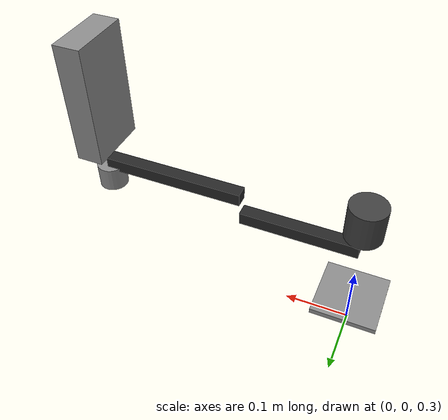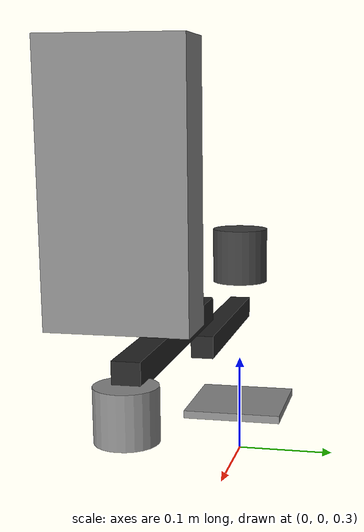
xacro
<?xml version="1.0"?>
<robot name="army_manipulator" xmlns:xacro="http://www.ros.org/wiki/xacro">

  <!-- true: mock_components/GenericSystem (RViz/MoveIt2 검증용, 기본값)
       false: 실제 하드웨어 인터페이스 (팀원 Hardware Interface 완성 후) -->
  <xacro:arg name="use_mock_hardware" default="true"/>

  <!-- 구동부 상면 높이: world -> base_link -->
  <xacro:property name="base_height" value="0.350"/>

  <xacro:include filename="$(find army_manipulator_description)/urdf/materials.xacro"/>
  <xacro:include filename="$(find army_manipulator_description)/urdf/army_manipulator_ros2_control.xacro"/>
  <xacro:include filename="$(find army_manipulator_description)/urdf/army_manipulator_macro.xacro"/>

  <link name="world"/>

  <xacro:army_manipulator prefix="" parent="world" use_mock_hardware="$(arg use_mock_hardware)">
    <origin xyz="0 0 ${base_height}" rpy="0 0 0"/>
  </xacro:army_manipulator>

</robot>

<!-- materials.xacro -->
<robot xmlns:xacro="http://www.ros.org/wiki/xacro">

  <material name="cfrp">
    <color rgba="0.15 0.15 0.15 1.0"/>
  </material>
  <material name="petg_grey">
    <color rgba="0.55 0.55 0.55 1.0"/>
  </material>
  <material name="motor_dark">
    <color rgba="0.25 0.25 0.25 1.0"/>
  </material>
  <material name="tcp_red">
    <color rgba="1.0 0.1 0.1 1.0"/>
  </material>

</robot>

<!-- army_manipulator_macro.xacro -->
<robot xmlns:xacro="http://www.ros.org/wiki/xacro">

  <xacro:macro name="army_manipulator" params="prefix parent use_mock_hardware:=true *origin">

    <!-- ========== 치수 파라미터 ========== -->
    <xacro:property name="sh_off"   value="0.1616"/>  <!-- base_link -> shoulder_pan_link -->
    <xacro:property name="L1"       value="0.180"/>   <!-- shoulder -> elbow -->
    <xacro:property name="L2"       value="0.220"/>   <!-- elbow -> wrist -->
    <xacro:property name="L3"       value="0.220"/>   <!-- wrist -> tcp (gripper 포함) -->
    <xacro:property name="off_shoulder" value="-0.055"/>
    <xacro:property name="off_elbow"    value="0.035"/>
    <xacro:property name="off_wrist"    value="-0.025"/>
    <xacro:property name="off_gripper"  value="0.038"/>

    <!-- ========== parent -> base_link ========== -->
    <joint name="${prefix}world_to_base" type="fixed">
      <parent link="${parent}"/>
      <child  link="${prefix}base_link"/>
      <xacro:insert_block name="origin"/>
    </joint>

    <!-- base_link: 암 마운팅 플레이트 (구동부 상면) -->
    <link name="${prefix}base_link">
      <visual>
        <origin xyz="0 0 0" rpy="0 0 0"/>
        <geometry><box size="0.100 0.100 0.008"/></geometry>
        <material name="petg_grey"/>
      </visual>
      <collision>
        <origin xyz="0 0 0" rpy="0 0 0"/>
        <geometry><box size="0.100 0.100 0.008"/></geometry>
      </collision>
      <inertial>
        <mass value="0.3"/>
        <origin xyz="0 0 0"/>
        <inertia ixx="2.5e-4" ixy="0" ixz="0"
                 iyy="2.5e-4" iyz="0" izz="5.0e-4"/>
      </inertial>
    </link>

    <!-- ========== base_link -> shoulder_pan_link ========== -->
    <!-- XH540-W270-T | Z축 회전 (베이스 선회) -->
    <joint name="${prefix}base_rotate_joint" type="revolute">
      <parent link="${prefix}base_link"/>
      <child  link="${prefix}shoulder_pan_link"/>
      <origin xyz="0 0 ${sh_off}" rpy="0 0 0"/>
      <axis xyz="0 0 1"/>
      <limit lower="-3.1416" upper="3.1416"
             effort="3.1" velocity="2.618"/>
      <!-- XH540 stall torque 3.1 Nm @ 12V, no-load speed 25 RPM = 2.618 rad/s -->
      <dynamics damping="0.05" friction="0.02"/>
    </joint>

    <!-- shoulder_pan_link: XH540 모터 바디 -->
    <link name="${prefix}shoulder_pan_link">
      <visual>
        <origin xyz="0 0 0" rpy="0 0 0"/>
        <geometry><cylinder radius="0.028" length="0.055"/></geometry>
        <material name="motor_dark"/>
      </visual>
      <collision>
        <origin xyz="0 0 0" rpy="0 0 0"/>
        <geometry><cylinder radius="0.028" length="0.055"/></geometry>
      </collision>
      <inertial>
        <mass value="0.202"/>
        <origin xyz="0 0 0"/>
        <inertia ixx="1.3e-4" ixy="0" ixz="0"
                 iyy="1.3e-4" iyz="0" izz="8.0e-5"/>
      </inertial>
    </link>

    <!-- ========== shoulder_pan_link -> upper_arm_link ========== -->
    <!-- RMD-X8-120 | Y축 회전 (숄더 피치), Case C 오프셋 z=-55mm -->
    <joint name="${prefix}shoulder_lift_joint" type="revolute">
      <parent link="${prefix}shoulder_pan_link"/>
      <child  link="${prefix}upper_arm_link"/>
      <origin xyz="0 0 ${off_shoulder}" rpy="0 0 0"/>
      <axis xyz="0 1 0"/>
      <limit lower="0.0" upper="2.0944"
             effort="120.0" velocity="1.047"/>
      <!-- RMD-X8-120 peak torque 120 Nm, no-load speed ~10 RPM = 1.047 rad/s -->
      <dynamics damping="1.0" friction="0.1"/>
    </joint>

    <!-- upper_arm_link: CFRP 20x20x2T, L1 = 180mm -->
    <link name="${prefix}upper_arm_link">
      <visual>
        <origin xyz="${L1/2} 0 0" rpy="0 1.5708 0"/>
        <geometry><box size="0.020 0.020 ${L1}"/></geometry>
        <material name="cfrp"/>
      </visual>
      <collision>
        <origin xyz="${L1/2} 0 0" rpy="0 0 0"/>
        <geometry><box size="${L1} 0.022 0.022"/></geometry>
      </collision>
      <inertial>
        <mass value="0.08"/>
        <origin xyz="${L1/2} 0 0"/>
        <inertia ixx="6.0e-6" ixy="0" ixz="0"
                 iyy="2.2e-4" iyz="0" izz="2.2e-4"/>
      </inertial>
    </link>

    <!-- ========== upper_arm_link -> forearm_link ========== -->
    <!-- RMD-X6-60 | Y축 회전 (엘보우 피치), x=L1, Case C 오프셋 z=+35mm -->
    <joint name="${prefix}elbow_joint" type="revolute">
      <parent link="${prefix}upper_arm_link"/>
      <child  link="${prefix}forearm_link"/>
      <origin xyz="${L1} 0 ${off_elbow}" rpy="0 0 0"/>
      <axis xyz="0 1 0"/>
      <limit lower="-1.5708" upper="0.3491"
             effort="60.0" velocity="1.571"/>
      <!-- RMD-X6-60 peak torque 60 Nm -->
      <dynamics damping="0.5" friction="0.05"/>
    </joint>

    <!-- forearm_link: CFRP 20x20x2T, L2 = 220mm -->
    <link name="${prefix}forearm_link">
      <visual>
        <origin xyz="${L2/2} 0 0" rpy="0 1.5708 0"/>
        <geometry><box size="0.020 0.020 ${L2}"/></geometry>
        <material name="cfrp"/>
      </visual>
      <collision>
        <origin xyz="${L2/2} 0 0" rpy="0 0 0"/>
        <geometry><box size="${L2} 0.022 0.022"/></geometry>
      </collision>
      <inertial>
        <mass value="0.10"/>
        <origin xyz="${L2/2} 0 0"/>
        <inertia ixx="7.3e-6" ixy="0" ixz="0"
                 iyy="4.0e-4" iyz="0" izz="4.0e-4"/>
      </inertial>
    </link>

    <!-- ========== forearm_link -> wrist_link ========== -->
    <!-- RMD-X4-36 | Y축 회전 (리스트 피치), x=L2, Case C 오프셋 z=-25mm -->
    <joint name="${prefix}wrist_joint" type="revolute">
      <parent link="${prefix}forearm_link"/>
      <child  link="${prefix}wrist_link"/>
      <origin xyz="${L2} 0 ${off_wrist}" rpy="0 0 0"/>
      <axis xyz="0 1 0"/>
      <limit lower="-2.0944" upper="2.0944"
             effort="36.0" velocity="2.618"/>
      <!-- RMD-X4-36 peak torque 36 Nm -->
      <dynamics damping="0.2" friction="0.02"/>
    </joint>

    <!-- wrist_link: 리스트 모터 하우징 (PETG) -->
    <link name="${prefix}wrist_link">
      <visual>
        <origin xyz="0 0 0" rpy="0 0 0"/>
        <geometry><cylinder radius="0.022" length="0.038"/></geometry>
        <material name="petg_grey"/>
      </visual>
      <collision>
        <origin xyz="0 0 0" rpy="0 0 0"/>
        <geometry><cylinder radius="0.022" length="0.038"/></geometry>
      </collision>
      <inertial>
        <mass value="0.09"/>
        <origin xyz="0 0 0"/>
        <inertia ixx="5.0e-5" ixy="0" ixz="0"
                 iyy="5.0e-5" iyz="0" izz="3.0e-5"/>
      </inertial>
    </link>

    <!-- ========== wrist_link -> gripper_base_link ========== -->
    <!-- MX-106T | Z축 회전 (그리퍼 회전/핑거 구동), Case C 오프셋 z=+38mm -->
    <joint name="${prefix}gripper_joint" type="revolute">
      <parent link="${prefix}wrist_link"/>
      <child  link="${prefix}gripper_base_link"/>
      <origin xyz="0 0 ${off_gripper}" rpy="0 0 0"/>
      <axis xyz="0 0 1"/>
      <limit lower="-2.3562" upper="2.3562"
             effort="8.4" velocity="3.665"/>
      <!-- MX-106T stall torque 8.4 Nm @ 12V, no-load 45 RPM = 4.712 rad/s -->
      <dynamics damping="0.05" friction="0.01"/>
    </joint>

    <!-- gripper_base_link: EE 바디 + 핑거 어셈블리 -->
    <link name="${prefix}gripper_base_link">
      <visual>
        <origin xyz="0 0 0.110" rpy="0 0 0"/>
        <geometry><box size="0.040 0.095 0.182"/></geometry>
        <!-- 너비 95mm = 95x95x95 타겟 기준 최대 개구량 -->
        <material name="petg_grey"/>
      </visual>
      <collision>
        <origin xyz="0 0 0.110" rpy="0 0 0"/>
        <geometry><box size="0.040 0.095 0.182"/></geometry>
      </collision>
      <inertial>
        <mass value="0.15"/>
        <origin xyz="0 0 0.110"/>
        <inertia ixx="5.0e-4" ixy="0" ixz="0"
                 iyy="5.0e-4" iyz="0" izz="1.0e-4"/>
      </inertial>
    </link>

    <!-- ========== gripper_base_link -> tcp_link (fixed) ========== -->
    <joint name="${prefix}tcp_joint" type="fixed">
      <parent link="${prefix}gripper_base_link"/>
      <child  link="${prefix}tcp_link"/>
      <origin xyz="0 0 0.182" rpy="0 0 0"/>
    </joint>

    <!-- tcp_link: 툴 센터 포인트 -->
    <link name="${prefix}tcp_link">
      <visual>
        <origin xyz="0 0 0" rpy="0 0 0"/>
        <geometry><sphere radius="0.005"/></geometry>
        <material name="tcp_red"/>
      </visual>
      <inertial>
        <mass value="0.001"/>
        <inertia ixx="1e-7" ixy="0" ixz="0"
                 iyy="1e-7" iyz="0" izz="1e-7"/>
      </inertial>
    </link>

    <xacro:army_manipulator_ros2_control prefix="${prefix}" use_mock_hardware="${use_mock_hardware}"/>

  </xacro:macro>

</robot>
